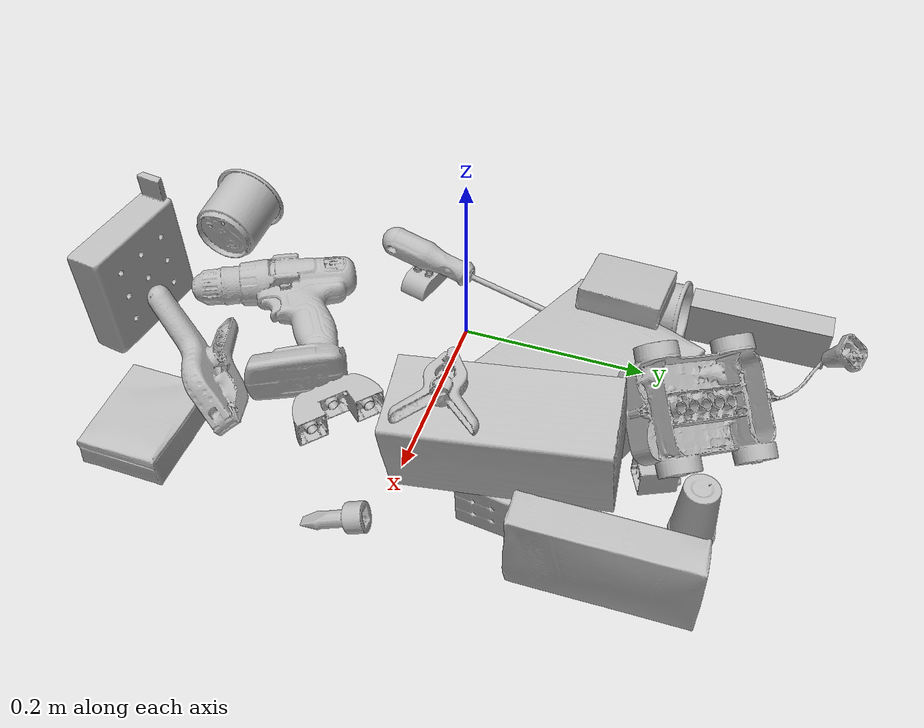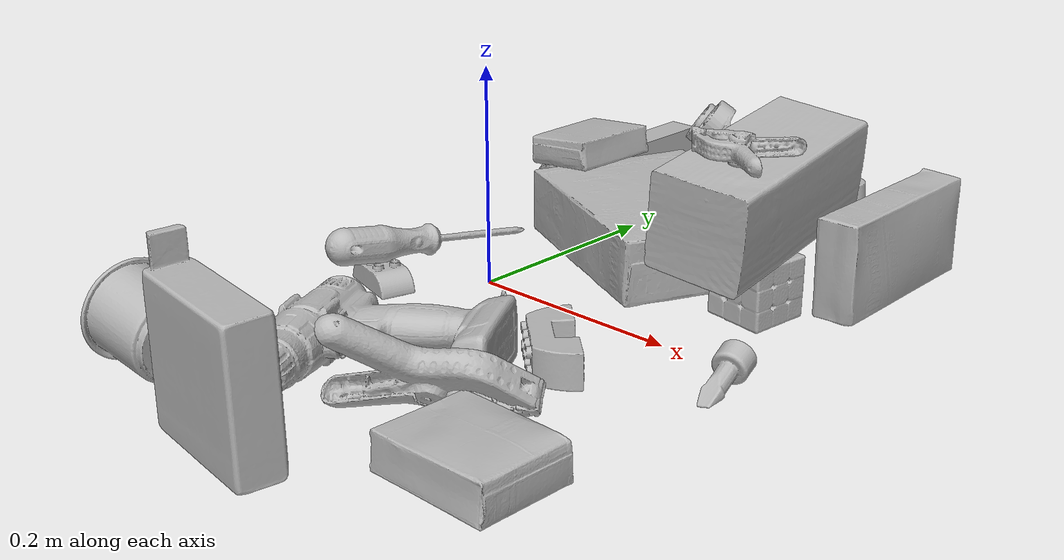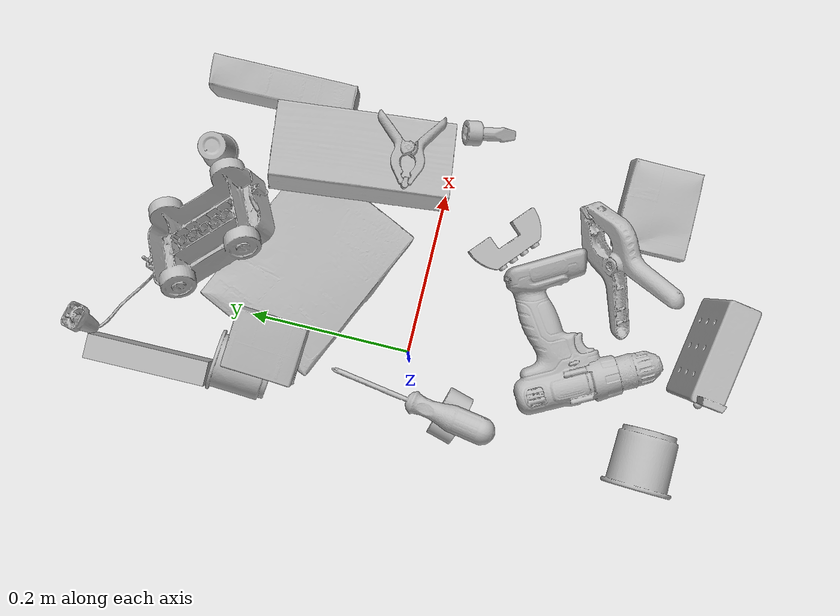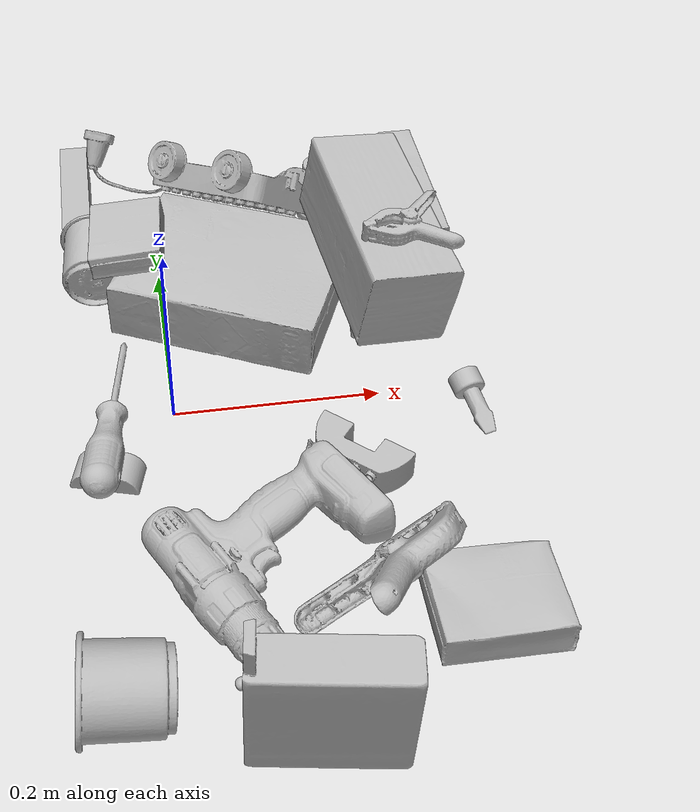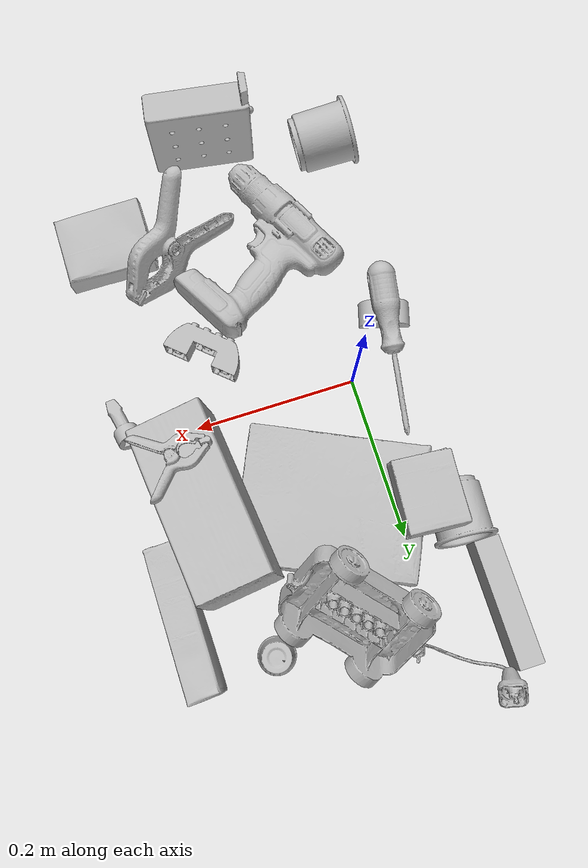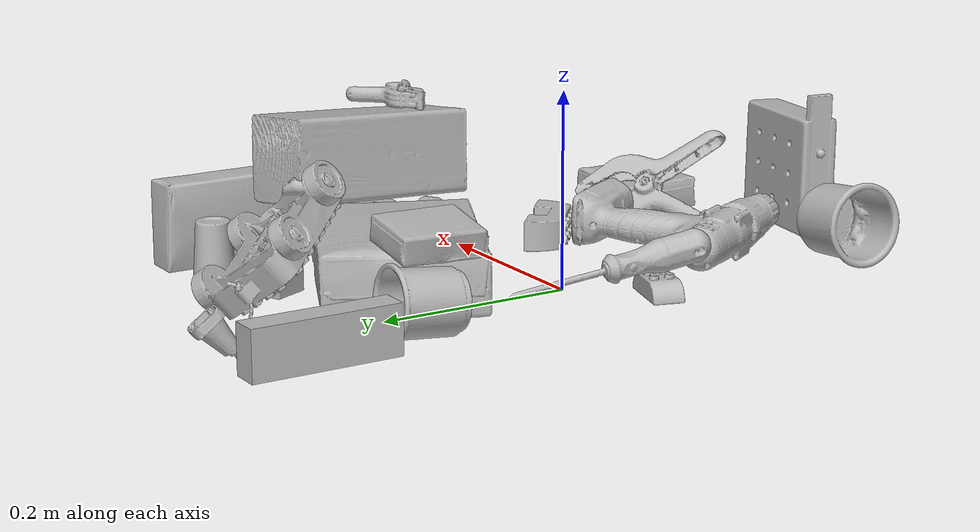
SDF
<sdf version="1.4">
  <world name="default">
    <light name="light1" type="point">
      <pose>0 0 1 0 0 0</pose>
      <diffuse>3 3 3 1</diffuse>
      <specular>3 3 3 1</specular>
    </light>
    <light name="light2" type="point">
      <pose>0 0.5 2 0 0 0</pose>
      <diffuse>1 1 1 1</diffuse>
      <specular>1 1 1 1</specular>
    </light>
    <light name="light3" type="point">
      <pose>0 0.5 2 0 0 0</pose>
      <diffuse>3 3 3 1</diffuse>
      <specular>3 3 3 1</specular>
    </light>
    <scene>
      <ambient>0.7 0.7 0.7</ambient>
    </scene>
    <model name="box21">
      <link name="link_box21">
        <collision name="default">
          <geometry>
            <mesh>
              <uri>model://cracker_box/collision_meshes/collision.obj</uri>
              <scale>1.0 1.0 1.0</scale>
            </mesh>
          </geometry>
          <surface>
            <friction>
              <ode>
                <mu>0.5</mu>
                <mu2>0.5</mu2>
              </ode>
            </friction>
          <contact>
        <ode>
            <max_vel>0</max_vel>
            <min_depth>0.0001</min_depth>
            <kp>1e8</kp>
        </ode>
    </contact></surface>
        </collision>
        <visual name="default">
          <geometry>
            <mesh>
              <uri>model://cracker_box/visual_meshes/visual.dae</uri>
              <scale>1.0 1.0 1.0</scale>
            </mesh>
          </geometry>
        </visual>
        <inertial>
          <mass>2.590176582336426</mass>
          <pose>0.0009464152390137315 0.00025434247800149024 -0.0017029535956680775 -0.0003162072774594163 -0.011106486806667554 0.0025467954652388498</pose>
          <inertia>
            <ixx>0.0065882523</ixx>
            <iyy>0.0108785</iyy>
            <izz>0.015524619</izz>
            <ixy>0</ixy>
            <ixz>0</ixz>
            <iyz>0</iyz>
          </inertia>
        </inertial>
      </link>
      <pose>0.07463415712118149 0.14307989180088043 0.035533588379621506 3.1370951705550505 -0.016576409439154765 2.7120511319542464</pose>
    </model>
    <model name="box22">
      <link name="link_box22">
        <collision name="default">
          <geometry>
            <mesh>
              <uri>model://gelatin_box/collision_meshes/collision.obj</uri>
              <scale>1.0 1.0 1.0</scale>
            </mesh>
          </geometry>
          <surface>
            <friction>
              <ode>
                <mu>0.5</mu>
                <mu2>0.5</mu2>
              </ode>
            </friction>
          <contact>
        <ode>
            <max_vel>0</max_vel>
            <min_depth>0.0001</min_depth>
            <kp>1e8</kp>
        </ode>
    </contact></surface>
        </collision>
        <visual name="default">
          <geometry>
            <mesh>
              <uri>model://gelatin_box/visual_meshes/visual.dae</uri>
              <scale>1.0 1.0 1.0</scale>
            </mesh>
          </geometry>
        </visual>
        <inertial>
          <mass>0.25047940015792847</mass>
          <pose>0.0004319618456065655 0.00011156871914863586 -0.0003640321083366871 -0.0010503719848663328 -0.004755819155031653 0.016440561334722496</pose>
          <inertia>
            <ixx>0.00017681804</ixx>
            <iyy>0.00012630019</iyy>
            <izz>0.0002691564</izz>
            <ixy>0</ixy>
            <ixz>0</ixz>
            <iyz>0</iyz>
          </inertia>
        </inertial>
      </link>
      <pose>-0.028453370556235313 0.16655762493610382 0.08601021766662598 3.1283774633111867 0.11265929029636779 3.0815515616509717</pose>
    </model>
    <model name="box23">
      <link name="link_box23">
        <collision name="default">
          <geometry>
            <mesh>
              <uri>model://pudding_box/collision_meshes/collision.obj</uri>
              <scale>1.0 1.0 1.0</scale>
            </mesh>
          </geometry>
          <surface>
            <friction>
              <ode>
                <mu>0.5</mu>
                <mu2>0.5</mu2>
              </ode>
            </friction>
          <contact>
        <ode>
            <max_vel>0</max_vel>
            <min_depth>0.0001</min_depth>
            <kp>1e8</kp>
        </ode>
    </contact></surface>
        </collision>
        <visual name="default">
          <geometry>
            <mesh>
              <uri>model://pudding_box/visual_meshes/visual.dae</uri>
              <scale>1.0 1.0 1.0</scale>
            </mesh>
          </geometry>
        </visual>
        <inertial>
          <mass>0.39469316601753235</mass>
          <pose>0.0004894821904599667 0.000806788622867316 -0.0005188827635720372 0.005213100892100292 -0.006603796836808699 0.020079821441474487</pose>
          <inertia>
            <ixx>0.00044618026</ixx>
            <iyy>0.00030019323</iyy>
            <izz>0.00065890176</izz>
            <ixy>0</ixy>
            <ixz>0</ixz>
            <iyz>0</iyz>
          </inertia>
        </inertial>
      </link>
      <pose>0.24295833706855774 -0.25763964653015137 0.018686017021536827 3.141592139507856 4.144033243703109e-06 1.5684150640524859</pose>
    </model>
    <model name="cup1">
      <link name="link_cup1">
        <collision name="default">
          <geometry>
            <mesh>
              <uri>model://cup_small/collision_meshes/collision.obj</uri>
              <scale>1.0 1.0 1.0</scale>
            </mesh>
          </geometry>
          <surface>
            <friction>
              <ode>
                <mu>0.5</mu>
                <mu2>0.5</mu2>
              </ode>
            </friction>
          <contact>
        <ode>
            <max_vel>0</max_vel>
            <min_depth>0.0001</min_depth>
            <kp>1e8</kp>
        </ode>
    </contact></surface>
        </collision>
        <visual name="default">
          <geometry>
            <mesh>
              <uri>model://cup_small/visual_meshes/visual.dae</uri>
              <scale>1.0 1.0 1.0</scale>
            </mesh>
          </geometry>
        </visual>
        <inertial>
          <mass>0.021035347133874893</mass>
          <pose>0.0001048244594130665 -0.0003377834218554199 -0.010742821730673313 -0.011493211249102088 -0.015280240526329824 -0.5058153233609384</pose>
          <inertia>
            <ixx>1.2385285e-05</ixx>
            <iyy>1.2449176e-05</iyy>
            <izz>5.591994e-06</izz>
            <ixy>0</ixy>
            <ixz>0</ixz>
            <iyz>0</iyz>
          </inertia>
        </inertial>
      </link>
      <pose>0.18732985854148865 0.28722405433654785 0.0347023643553257 -3.1331764741512487 0.007945862633685859 2.4184992472039117</pose>
    </model>
    <model name="cup2">
      <link name="link_cup2">
        <collision name="default">
          <geometry>
            <mesh>
              <uri>model://e_cups/collision_meshes/collision.obj</uri>
              <scale>1.0 1.0 1.0</scale>
            </mesh>
          </geometry>
          <surface>
            <friction>
              <ode>
                <mu>0.5</mu>
                <mu2>0.5</mu2>
              </ode>
            </friction>
          <contact>
        <ode>
            <max_vel>0</max_vel>
            <min_depth>0.0001</min_depth>
            <kp>1e8</kp>
        </ode>
    </contact></surface>
        </collision>
        <visual name="default">
          <geometry>
            <mesh>
              <uri>model://e_cups/visual_meshes/visual.dae</uri>
              <scale>1.0 1.0 1.0</scale>
            </mesh>
          </geometry>
        </visual>
        <inertial>
          <mass>0.053841520100831985</mass>
          <pose>0.0011355747701600194 0.0028797851409763098 -0.0038829720579087734 0.69523823542345 0.08767615215021585 -0.5235238319868403</pose>
          <inertia>
            <ixx>4.7474743e-05</ixx>
            <iyy>4.9617902e-05</iyy>
            <izz>4.5391338e-05</izz>
            <ixy>0</ixy>
            <ixz>0</ixz>
            <iyz>0</iyz>
          </inertia>
        </inertial>
      </link>
      <pose>-0.06450009346008301 0.1930302083492279 0.035038236528635025 -1.3175390442422235 -1.2290894327646458 -0.3216970859401935</pose>
    </model>
    <model name="box11">
      <link name="link_box11">
        <collision name="default">
          <geometry>
            <mesh>
              <uri>model://jenga/collision_meshes/collision.obj</uri>
              <scale>1.0 1.0 1.0</scale>
            </mesh>
          </geometry>
          <surface>
            <friction>
              <ode>
                <mu>0.5</mu>
                <mu2>0.5</mu2>
              </ode>
            </friction>
          <contact>
        <ode>
            <max_vel>0</max_vel>
            <min_depth>0.0001</min_depth>
            <kp>1e8</kp>
        </ode>
    </contact></surface>
        </collision>
        <visual name="default">
          <geometry>
            <mesh>
              <uri>model://jenga/visual_meshes/visual.dae</uri>
              <scale>1.0 1.0 1.0</scale>
            </mesh>
          </geometry>
        </visual>
        <inertial>
          <mass>0.26362571120262146</mass>
          <pose>-2.502855807051674e-07 -0.00010250010382151231 -4.0923401684267446e-05 0.0 -7.342155186052628e-07 0.0</pose>
          <inertia>
            <ixx>7.295163e-05</ixx>
            <iyy>0.0004943182</iyy>
            <izz>0.0005277267</izz>
            <ixy>0</ixy>
            <ixz>0</ixz>
            <iyz>0</iyz>
          </inertia>
        </inertial>
      </link>
      <pose>-0.08181799948215485 0.3073399066925049 0.024702079594135284 1.5774344575657855 2.5884994804779367e-06 1.5743533172840414</pose>
    </model>
    <model name="box12">
      <link name="link_box12">
        <collision name="default">
          <geometry>
            <mesh>
              <uri>model://rubiks_cube/collision_meshes/collision.obj</uri>
              <scale>1.0 1.0 1.0</scale>
            </mesh>
          </geometry>
          <surface>
            <friction>
              <ode>
                <mu>0.5</mu>
                <mu2>0.5</mu2>
              </ode>
            </friction>
          <contact>
        <ode>
            <max_vel>0</max_vel>
            <min_depth>0.0001</min_depth>
            <kp>1e8</kp>
        </ode>
    </contact></surface>
        </collision>
        <visual name="default">
          <geometry>
            <mesh>
              <uri>model://rubiks_cube/visual_meshes/visual.dae</uri>
              <scale>1.0 1.0 1.0</scale>
            </mesh>
          </geometry>
        </visual>
        <inertial>
          <mass>0.2476155012845993</mass>
          <pose>2.6721041649580002e-05 5.256966323941015e-05 -7.2643156272533815e-06 -0.05467269607811095 -0.09813983501015876 -0.034455733913541106</pose>
          <inertia>
            <ixx>0.00013682418</ixx>
            <iyy>0.0001361861</iyy>
            <izz>0.00013795799</izz>
            <ixy>0</ixy>
            <ixz>0</ixz>
            <iyz>0</iyz>
          </inertia>
        </inertial>
      </link>
      <pose>0.21927733719348907 0.1018788143992424 0.029316091910004616 3.1392153847619677 1.5477268787212424 3.019129743454782</pose>
    </model>
    <model name="box13">
      <link name="link_box13">
        <collision name="default">
          <geometry>
            <mesh>
              <uri>model://sugar_box/collision_meshes/collision.obj</uri>
              <scale>1.0 1.0 1.0</scale>
            </mesh>
          </geometry>
          <surface>
            <friction>
              <ode>
                <mu>0.5</mu>
                <mu2>0.5</mu2>
              </ode>
            </friction>
          <contact>
        <ode>
            <max_vel>0</max_vel>
            <min_depth>0.0001</min_depth>
            <kp>1e8</kp>
        </ode>
    </contact></surface>
        </collision>
        <visual name="default">
          <geometry>
            <mesh>
              <uri>model://sugar_box/visual_meshes/visual.dae</uri>
              <scale>1.0 1.0 1.0</scale>
            </mesh>
          </geometry>
        </visual>
        <inertial>
          <mass>0.6861893534660339</mass>
          <pose>0.0010343727190047503 3.849109634757042e-05 -0.0003636480250861496 -0.00040462627129080113 0.001050663522124822 0.0026153787889376494</pose>
          <inertia>
            <ixx>0.0005717311</ixx>
            <iyy>0.0018479523</iyy>
            <izz>0.0022122194</izz>
            <ixy>0</ixy>
            <ixz>0</ixz>
            <iyz>0</iyz>
          </inertia>
        </inertial>
      </link>
      <pose>0.2748245596885681 0.2192016839981079 0.04645009711384773 1.5710197430011112 -3.998152826175975e-05 1.586407677046418</pose>
    </model>
    <model name="box14">
      <link name="link_box14">
        <collision name="default">
          <geometry>
            <mesh>
              <uri>model://wood_block/collision_meshes/collision.obj</uri>
              <scale>1.0 1.0 1.0</scale>
            </mesh>
          </geometry>
          <surface>
            <friction>
              <ode>
                <mu>0.5</mu>
                <mu2>0.5</mu2>
              </ode>
            </friction>
          <contact>
        <ode>
            <max_vel>0</max_vel>
            <min_depth>0.0001</min_depth>
            <kp>1e8</kp>
        </ode>
    </contact></surface>
        </collision>
        <visual name="default">
          <geometry>
            <mesh>
              <uri>model://wood_block/visual_meshes/visual.dae</uri>
              <scale>1.0 1.0 1.0</scale>
            </mesh>
          </geometry>
        </visual>
        <inertial>
          <mass>2.2081377506256104</mass>
          <pose>-5.813315965497168e-06 -0.000570809468626976 0.00026408585836179554 -0.052206634003801496 -0.0051926960857359 -0.00686137798931887</pose>
          <inertia>
            <ixx>0.0029548227</ixx>
            <iyy>0.009334286</iyy>
            <izz>0.0092993695</izz>
            <ixy>0</ixy>
            <ixz>0</ixz>
            <iyz>0</iyz>
          </inertia>
        </inertial>
      </link>
      <pose>0.21301402151584625 0.1086185947060585 0.1093091368675232 1.6888706937375622 -0.07901379176790477 1.6855854047224264</pose>
    </model>
    <model name="cup15">
      <link name="link_cup15">
        <collision name="default">
          <geometry>
            <mesh>
              <uri>model://g_cups/collision_meshes/collision.obj</uri>
              <scale>1.0 1.0 1.0</scale>
            </mesh>
          </geometry>
          <surface>
            <friction>
              <ode>
                <mu>0.5</mu>
                <mu2>0.5</mu2>
              </ode>
            </friction>
          <contact>
        <ode>
            <max_vel>0</max_vel>
            <min_depth>0.0001</min_depth>
            <kp>1e8</kp>
        </ode>
    </contact></surface>
        </collision>
        <visual name="default">
          <geometry>
            <mesh>
              <uri>model://g_cups/visual_meshes/visual.dae</uri>
              <scale>1.0 1.0 1.0</scale>
            </mesh>
          </geometry>
        </visual>
        <inertial>
          <mass>0.09534990042448044</mass>
          <pose>-0.000794626830611378 -4.206429366604425e-05 -0.002132937079295516 -0.21382187015428292 -0.3141046168173621 0.3112040328096479</pose>
          <inertia>
            <ixx>0.00011129469</ixx>
            <iyy>0.0001109161</iyy>
            <izz>0.00011528214</izz>
            <ixy>0</ixy>
            <ixz>0</ixz>
            <iyz>0</iyz>
          </inertia>
        </inertial>
      </link>
      <pose>-0.05861244723200798 -0.3076384365558624 0.040012333542108536 -1.4463394338856854 -0.6202423834398968 1.4599862645339239</pose>
    </model>
    <model name="toy1">
      <link name="link_toy1">
        <collision name="default">
          <geometry>
            <mesh>
              <uri>model://a_lego_duplo/collision_meshes/collision.obj</uri>
              <scale>1.0 1.0 1.0</scale>
            </mesh>
          </geometry>
          <surface>
            <friction>
              <ode>
                <mu>0.5</mu>
                <mu2>0.5</mu2>
              </ode>
            </friction>
          <contact>
        <ode>
            <max_vel>0</max_vel>
            <min_depth>0.0001</min_depth>
            <kp>1e8</kp>
        </ode>
    </contact></surface>
        </collision>
        <visual name="default">
          <geometry>
            <mesh>
              <uri>model://a_lego_duplo/visual_meshes/visual.dae</uri>
              <scale>1.0 1.0 1.0</scale>
            </mesh>
          </geometry>
        </visual>
        <inertial>
          <mass>0.019288161769509315</mass>
          <pose>-0.00011337728938087821 0.00018517542048357427 0.00036926069878973067 -0.014116980162122142 -0.00012566491180396528 6.141847735431564e-05</pose>
          <inertia>
            <ixx>2.4728956e-06</ixx>
            <iyy>5.539828e-06</iyy>
            <izz>6.86231e-06</izz>
            <ixy>0</ixy>
            <ixz>0</ixz>
            <iyz>0</iyz>
          </inertia>
        </inertial>
      </link>
      <pose>-0.06486160308122635 -0.06965740025043488 0.012113331817090511 9.244425790680637e-05 2.1182211764052096e-05 -0.2692459299849918</pose>
    </model>
    <model name="toy2">
      <link name="link_toy2">
        <collision name="default">
          <geometry>
            <mesh>
              <uri>model://nine_hole_peg_test/collision_meshes/collision.obj</uri>
              <scale>1.0 1.0 1.0</scale>
            </mesh>
          </geometry>
          <surface>
            <friction>
              <ode>
                <mu>0.5</mu>
                <mu2>0.5</mu2>
              </ode>
            </friction>
          <contact>
        <ode>
            <max_vel>0</max_vel>
            <min_depth>0.0001</min_depth>
            <kp>1e8</kp>
        </ode>
    </contact></surface>
        </collision>
        <visual name="default">
          <geometry>
            <mesh>
              <uri>model://nine_hole_peg_test/visual_meshes/visual.dae</uri>
              <scale>1.0 1.0 1.0</scale>
            </mesh>
          </geometry>
        </visual>
        <inertial>
          <mass>0.4416040778160095</mass>
          <pose>-0.004617387894541025 -0.009647616185247898 2.646069333422929e-05 -0.001466680632441769 0.0007194151669294288 -0.6342433000636255</pose>
          <inertia>
            <ixx>0.00069052057</ixx>
            <iyy>0.0006447319</iyy>
            <izz>0.0012099957</izz>
            <ixy>0</ixy>
            <ixz>0</ixz>
            <iyz>0</iyz>
          </inertia>
        </inertial>
      </link>
      <pose>0.08290985971689224 -0.3523326814174652 0.07397212833166122 1.5550080891322249 -0.009795215874385883 2.9885589738468585</pose>
    </model>
    <model name="toy3">
      <link name="link_toy3">
        <collision name="default">
          <geometry>
            <mesh>
              <uri>model://b_lego_duplo/collision_meshes/collision.obj</uri>
              <scale>1.0 1.0 1.0</scale>
            </mesh>
          </geometry>
          <surface>
            <friction>
              <ode>
                <mu>0.5</mu>
                <mu2>0.5</mu2>
              </ode>
            </friction>
          <contact>
        <ode>
            <max_vel>0</max_vel>
            <min_depth>0.0001</min_depth>
            <kp>1e8</kp>
        </ode>
    </contact></surface>
        </collision>
        <visual name="default">
          <geometry>
            <mesh>
              <uri>model://b_lego_duplo/visual_meshes/visual.dae</uri>
              <scale>1.0 1.0 1.0</scale>
            </mesh>
          </geometry>
        </visual>
        <inertial>
          <mass>0.05141952633857727</mass>
          <pose>-0.00011053046182496473 -9.15286273084348e-06 0.0019294298253953457 -0.03749504579203769 -0.026353926476799443 0.45190277296460496</pose>
          <inertia>
            <ixx>1.0523392e-05</ixx>
            <iyy>1.0594135e-05</iyy>
            <izz>9.376003e-06</izz>
            <ixy>0</ixy>
            <ixz>0</ixz>
            <iyz>0</iyz>
          </inertia>
        </inertial>
      </link>
      <pose>0.13802479207515717 0.24259018898010254 0.016152014955878258 -3.1278501088720123 1.5625339204302988 -1.1230026168367186</pose>
    </model>
    <model name="toy4">
      <link name="link_toy4">
        <collision name="default">
          <geometry>
            <mesh>
              <uri>model://e_lego_duplo/collision_meshes/collision.obj</uri>
              <scale>1.0 1.0 1.0</scale>
            </mesh>
          </geometry>
          <surface>
            <friction>
              <ode>
                <mu>0.5</mu>
                <mu2>0.5</mu2>
              </ode>
            </friction>
          <contact>
        <ode>
            <max_vel>0</max_vel>
            <min_depth>0.0001</min_depth>
            <kp>1e8</kp>
        </ode>
    </contact></surface>
        </collision>
        <visual name="default">
          <geometry>
            <mesh>
              <uri>model://e_lego_duplo/visual_meshes/visual.dae</uri>
              <scale>1.0 1.0 1.0</scale>
            </mesh>
          </geometry>
        </visual>
        <inertial>
          <mass>0.10851083695888519</mass>
          <pose>0.0003256036143284291 0.00023485413112211972 0.0019521439680829644 -0.022567807713092337 -6.825385155411165e-05 -0.007625153430497312</pose>
          <inertia>
            <ixx>2.2628092e-05</ixx>
            <iyy>9.28715e-05</iyy>
            <izz>9.0438196e-05</izz>
            <ixy>0</ixy>
            <ixz>0</ixz>
            <iyz>0</iyz>
          </inertia>
        </inertial>
      </link>
      <pose>0.16009686887264252 -0.09024887531995773 0.0165190901607275 -1.5717324150643122 0.005937442809219151 2.414655390914186</pose>
    </model>
    <model name="toy5">
      <link name="link_toy5">
        <collision name="default">
          <geometry>
            <mesh>
              <uri>model://e_toy_airplane/collision_meshes/collision.obj</uri>
              <scale>1.0 1.0 1.0</scale>
            </mesh>
          </geometry>
          <surface>
            <friction>
              <ode>
                <mu>0.5</mu>
                <mu2>0.5</mu2>
              </ode>
            </friction>
          <contact>
        <ode>
            <max_vel>0</max_vel>
            <min_depth>0.0001</min_depth>
            <kp>1e8</kp>
        </ode>
    </contact></surface>
        </collision>
        <visual name="default">
          <geometry>
            <mesh>
              <uri>model://e_toy_airplane/visual_meshes/visual.dae</uri>
              <scale>1.0 1.0 1.0</scale>
            </mesh>
          </geometry>
        </visual>
        <inertial>
          <mass>0.028576364740729332</mass>
          <pose>0.00011740469926735386 -2.248284363304265e-05 -0.011187203228473663 0.005518470588584354 0.009228302056362008 0.15041344019646216</pose>
          <inertia>
            <ixx>8.721834e-06</ixx>
            <iyy>8.6326145e-06</iyy>
            <izz>2.6212538e-06</izz>
            <ixy>0</ixy>
            <ixz>0</ixz>
            <iyz>0</iyz>
          </inertia>
        </inertial>
      </link>
      <pose>0.28719809651374817 -0.035560064017772675 0.010869881138205528 3.0037152022824025 1.310307594562256 1.6430424147281997</pose>
    </model>
    <model name="toy6">
      <link name="link_toy6">
        <collision name="default">
          <geometry>
            <mesh>
              <uri>model://g_lego_duplo/collision_meshes/collision.obj</uri>
              <scale>1.0 1.0 1.0</scale>
            </mesh>
          </geometry>
          <surface>
            <friction>
              <ode>
                <mu>0.5</mu>
                <mu2>0.5</mu2>
              </ode>
            </friction>
          <contact>
        <ode>
            <max_vel>0</max_vel>
            <min_depth>0.0001</min_depth>
            <kp>1e8</kp>
        </ode>
    </contact></surface>
        </collision>
        <visual name="default">
          <geometry>
            <mesh>
              <uri>model://g_lego_duplo/visual_meshes/visual.dae</uri>
              <scale>1.0 1.0 1.0</scale>
            </mesh>
          </geometry>
        </visual>
        <inertial>
          <mass>0.2849176824092865</mass>
          <pose>-0.050047703087329865 0.0017554622609168291 0.0038806754164397717 0.010963023424049216 0.03810828912622395 -0.09653028734865207</pose>
          <inertia>
            <ixx>0.000412849</ixx>
            <iyy>0.0012481753</iyy>
            <izz>0.0015615128</izz>
            <ixy>0</ixy>
            <ixz>0</ixz>
            <iyz>0</iyz>
          </inertia>
        </inertial>
      </link>
      <pose>0.0464760959148407 0.3086194097995758 0.05248650163412094 -2.4958523060905766 0.30294819894210695 2.3264636947146977</pose>
    </model>
    <model name="hardware1">
      <link name="link_hardware1">
        <collision name="default">
          <geometry>
            <mesh>
              <uri>model://large_clamp/collision_meshes/collision.obj</uri>
              <scale>1.0 1.0 1.0</scale>
            </mesh>
          </geometry>
          <surface>
            <friction>
              <ode>
                <mu>0.5</mu>
                <mu2>0.5</mu2>
              </ode>
            </friction>
          <contact>
        <ode>
            <max_vel>0</max_vel>
            <min_depth>0.0001</min_depth>
            <kp>1e8</kp>
        </ode>
    </contact></surface>
        </collision>
        <visual name="default">
          <geometry>
            <mesh>
              <uri>model://large_clamp/visual_meshes/visual.dae</uri>
              <scale>1.0 1.0 1.0</scale>
            </mesh>
          </geometry>
        </visual>
        <inertial>
          <mass>0.15191641449928284</mass>
          <pose>0.006369356997311115 0.00035856704926118255 -0.00018398075189907104 -0.0021330805905738653 0.00967158570552682 0.02663313568730603</pose>
          <inertia>
            <ixx>0.00013403181</ixx>
            <iyy>0.0002545337</iyy>
            <izz>0.00036821538</izz>
            <ixy>0</ixy>
            <ixz>0</ixz>
            <iyz>0</iyz>
          </inertia>
        </inertial>
      </link>
      <pose>0.16787011921405792 -0.22398902475833893 0.039932992309331894 -0.9054216551673341 0.13795990123076857 0.6859590263986279</pose>
    </model>
    <model name="hardware2">
      <link name="link_hardware2">
        <collision name="default">
          <geometry>
            <mesh>
              <uri>model://phillips_screwdriver/collision_meshes/collision.obj</uri>
              <scale>1.0 1.0 1.0</scale>
            </mesh>
          </geometry>
          <surface>
            <friction>
              <ode>
                <mu>0.5</mu>
                <mu2>0.5</mu2>
              </ode>
            </friction>
          <contact>
        <ode>
            <max_vel>0</max_vel>
            <min_depth>0.0001</min_depth>
            <kp>1e8</kp>
        </ode>
    </contact></surface>
        </collision>
        <visual name="default">
          <geometry>
            <mesh>
              <uri>model://phillips_screwdriver/visual_meshes/visual.dae</uri>
              <scale>1.0 1.0 1.0</scale>
            </mesh>
          </geometry>
        </visual>
        <inertial>
          <mass>0.09855502843856812</mass>
          <pose>-0.04777182266116142 0.001036230125464499 -0.00045555492397397757 -0.15717104537538515 0.005850995063257979 -0.0021567379341223374</pose>
          <inertia>
            <ixx>1.15792045e-05</ixx>
            <iyy>0.00014518296</iyy>
            <izz>0.00014530632</izz>
            <ixy>0</ixy>
            <ixz>0</ixz>
            <iyz>0</iyz>
          </inertia>
        </inertial>
      </link>
      <pose>-0.05608028918504715 -0.02139803022146225 0.033564820885658264 -0.2136669235363675 0.14627358252174355 1.4280471494762417</pose>
    </model>
    <model name="hardware3">
      <link name="link_hardware3">
        <collision name="default">
          <geometry>
            <mesh>
              <uri>model://power_drill/collision_meshes/collision.obj</uri>
              <scale>1.0 1.0 1.0</scale>
            </mesh>
          </geometry>
          <surface>
            <friction>
              <ode>
                <mu>0.5</mu>
                <mu2>0.5</mu2>
              </ode>
            </friction>
          <contact>
        <ode>
            <max_vel>0</max_vel>
            <min_depth>0.0001</min_depth>
            <kp>1e8</kp>
        </ode>
    </contact></surface>
        </collision>
        <visual name="default">
          <geometry>
            <mesh>
              <uri>model://power_drill/visual_meshes/visual.dae</uri>
              <scale>1.0 1.0 1.0</scale>
            </mesh>
          </geometry>
        </visual>
        <inertial>
          <mass>0.8579708337783813</mass>
          <pose>-0.01478054840117693 0.01436943281441927 0.0012414173688739538 0.004609163561922946 0.004073017669368797 -0.18362705043487879</pose>
          <inertia>
            <ixx>0.0034962718</ixx>
            <iyy>0.0013756006</iyy>
            <izz>0.0046174442</izz>
            <ixy>0</ixy>
            <ixz>0</ixz>
            <iyz>0</iyz>
          </inertia>
        </inertial>
      </link>
      <pose>0.07763813436031342 -0.1913510411977768 0.029153451323509216 -3.1216763584452356 -0.031179858601297992 -1.0792849956316024</pose>
    </model>
    <model name="hardware4">
      <link name="link_hardware4">
        <collision name="default">
          <geometry>
            <mesh>
              <uri>model://medium_clamp/collision_meshes/collision.obj</uri>
              <scale>1.0 1.0 1.0</scale>
            </mesh>
          </geometry>
          <surface>
            <friction>
              <ode>
                <mu>0.5</mu>
                <mu2>0.5</mu2>
              </ode>
            </friction>
          <contact>
        <ode>
            <max_vel>0</max_vel>
            <min_depth>0.0001</min_depth>
            <kp>1e8</kp>
        </ode>
    </contact></surface>
        </collision>
        <visual name="default">
          <geometry>
            <mesh>
              <uri>model://medium_clamp/visual_meshes/visual.dae</uri>
              <scale>1.0 1.0 1.0</scale>
            </mesh>
          </geometry>
        </visual>
        <inertial>
          <mass>0.019661318510770798</mass>
          <pose>0.005390993319451809 0.0003953249251935631 -0.00012221586075611413 -0.0012269159857183107 0.002584502991641296 0.038207758549707246</pose>
          <inertia>
            <ixx>5.356451e-06</ixx>
            <iyy>7.795151e-06</iyy>
            <izz>1.2006867e-05</izz>
            <ixy>0</ixy>
            <ixz>0</ixz>
            <iyz>0</iyz>
          </inertia>
        </inertial>
      </link>
      <pose>0.2306136190891266 0.05651592090725899 0.1622086763381958 -0.013764304583811508 -0.020392110447947913 -3.026755233822011</pose>
    </model>
  <physics type="ode">
      <max_contacts>50</max_contacts>
      <ode>
        <solver>
          <type>quick</type>
          <iters>75</iters>
        </solver>
        <constraints>
          <contact_max_correcting_vel>0</contact_max_correcting_vel>
          <contact_surface_layer>0</contact_surface_layer>
        </constraints>
      </ode>
    </physics></world>
</sdf>
